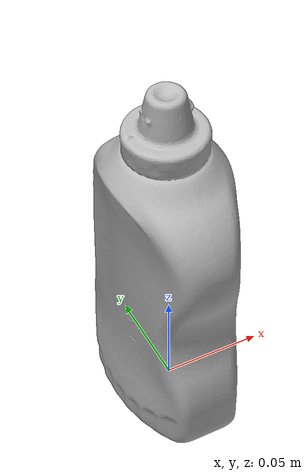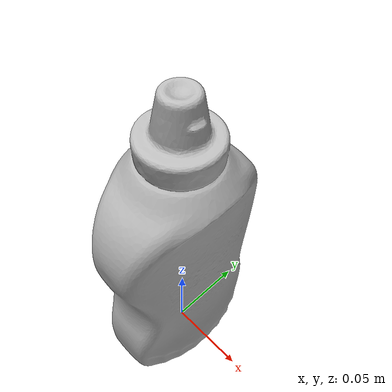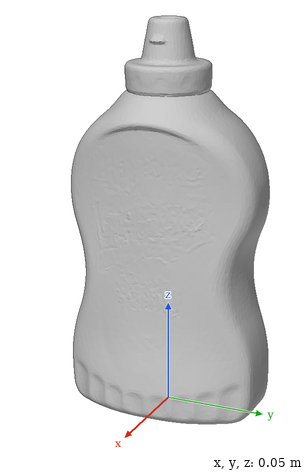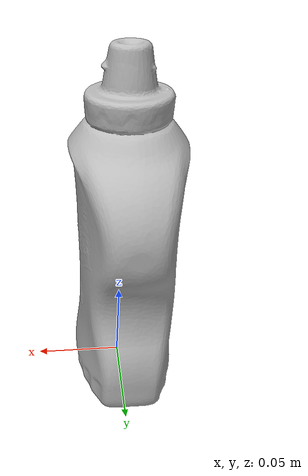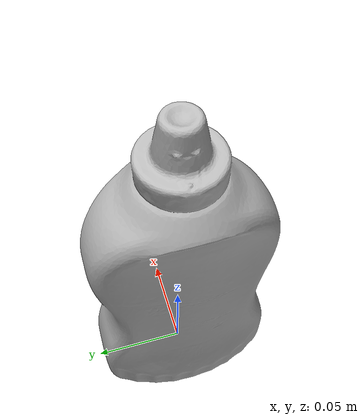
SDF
<?xml version="1.0"?>
<sdf version="1.6">
  <model name="mustard_bottle">
    <link name="link">
      <inertial>
        <mass>0.603</mass>
        <inertia>
          <!-- these formulas are for a box/cuboid, but an ellipsoid might be a better approximation -->
          <ixx>0.002267531</ixx>
          <ixy>0.0</ixy>
          <ixz>0.0</ixz>
          <iyy>0.001983066</iyy>
          <iyz>0.0</iyz>
          <izz>0.000622547</izz>
        </inertia>
        <pose>0 0 0.095 0 0 0</pose>
      </inertial>
      <collision name="collision">
        <pose>0.025 -0.005 0 0 0 -1.15</pose>
        <geometry>
          <mesh>
            <uri>model://mustard_bottle/meshes/nontextured.stl</uri>
          </mesh>
        </geometry>
      </collision>
      <visual name="visual">
        <pose>0.025 -0.005 0 0 0 -1.15</pose>
        <geometry>
          <mesh>
            <uri>model://mustard_bottle/meshes/textured.dae</uri>
          </mesh>
        </geometry>
      </visual>
    </link>
  </model>
</sdf>
